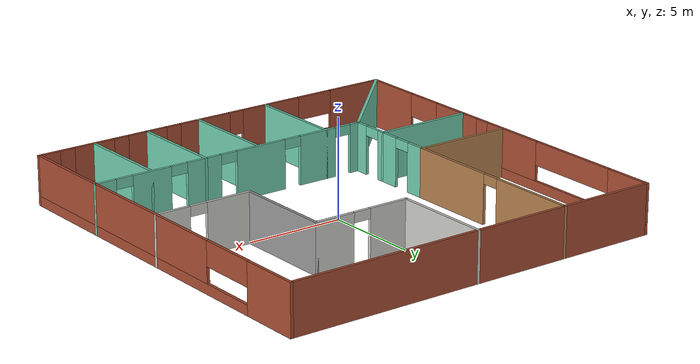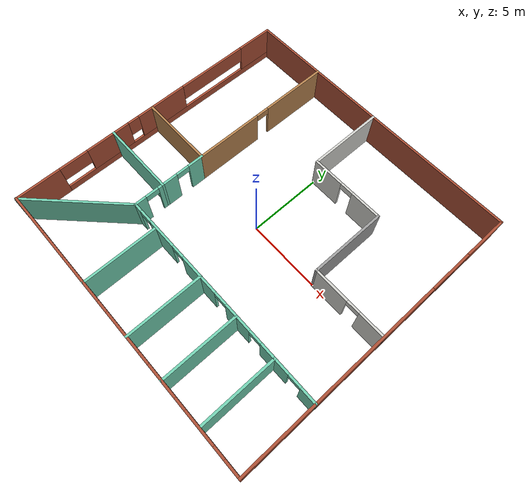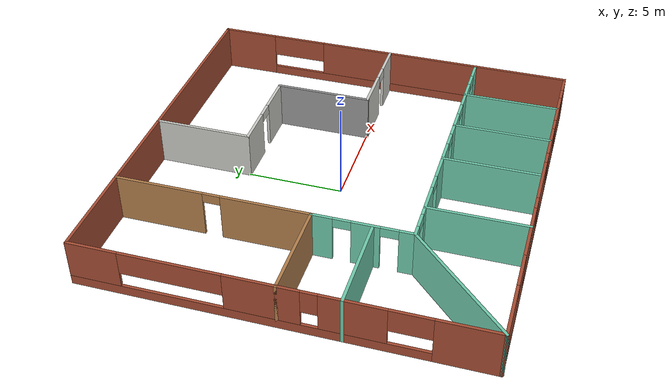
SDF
<?xml version='1.0'?>
<sdf version='1.6'>
  <model name='Building'>
    <pose frame=''>-0.015533 -0.015533 0 0 -0 0</pose>
    <link name='Wall_11'>
      <collision name='Wall_11_Collision'>
        <geometry>
          <box>
            <size>5.15 0.15 2.5</size>
          </box>
        </geometry>
        <pose frame=''>0 0 1.25 0 -0 0</pose>
      </collision>
      <visual name='Wall_11_Visual'>
        <pose frame=''>0 0 1.25 0 -0 0</pose>
        <geometry>
          <box>
            <size>5.15 0.15 2.5</size>
          </box>
        </geometry>
        <material>
          <script>
            <uri>file://media/materials/scripts/gazebo.material</uri>
            <name>Gazebo/Grey</name>
          </script>
          <ambient>0.435294 0.796078 0.67451 1</ambient>
        </material>
        <meta>
          <layer>0</layer>
        </meta>
      </visual>
      <pose frame=''>-7.48447 -2.98447 0 0 -0 0</pose>
    </link>
    <link name='Wall_13'>
      <collision name='Wall_13_Collision'>
        <geometry>
          <box>
            <size>7.22107 0.15 2.5</size>
          </box>
        </geometry>
        <pose frame=''>0 0 1.25 0 -0 0</pose>
      </collision>
      <visual name='Wall_13_Visual'>
        <pose frame=''>0 0 1.25 0 -0 0</pose>
        <geometry>
          <box>
            <size>7.22107 0.15 2.5</size>
          </box>
        </geometry>
        <material>
          <script>
            <uri>file://media/materials/scripts/gazebo.material</uri>
            <name>Gazebo/Grey</name>
          </script>
          <ambient>0.435294 0.796078 0.67451 1</ambient>
        </material>
        <meta>
          <layer>0</layer>
        </meta>
      </visual>
      <pose frame=''>-7.48447 -7.48447 0 0 0 -2.35619</pose>
    </link>
    <link name='Wall_15'>
      <collision name='Wall_15_Collision'>
        <geometry>
          <box>
            <size>5.15 0.15 2.5</size>
          </box>
        </geometry>
        <pose frame=''>0 0 1.25 0 -0 0</pose>
      </collision>
      <visual name='Wall_15_Visual'>
        <pose frame=''>0 0 1.25 0 -0 0</pose>
        <geometry>
          <box>
            <size>5.15 0.15 2.5</size>
          </box>
        </geometry>
        <material>
          <script>
            <uri>file://media/materials/scripts/gazebo.material</uri>
            <name>Gazebo/Grey</name>
          </script>
          <ambient>0.435294 0.796078 0.67451 1</ambient>
        </material>
        <meta>
          <layer>0</layer>
        </meta>
      </visual>
      <pose frame=''>-2.98447 -7.48447 0 0 0 -1.5708</pose>
    </link>
    <link name='Wall_17'>
      <collision name='Wall_17_Collision'>
        <geometry>
          <box>
            <size>5.15 0.15 2.5</size>
          </box>
        </geometry>
        <pose frame=''>0 0 1.25 0 -0 0</pose>
      </collision>
      <visual name='Wall_17_Visual'>
        <pose frame=''>0 0 1.25 0 -0 0</pose>
        <geometry>
          <box>
            <size>5.15 0.15 2.5</size>
          </box>
        </geometry>
        <material>
          <script>
            <uri>file://media/materials/scripts/gazebo.material</uri>
            <name>Gazebo/Grey</name>
          </script>
          <ambient>0.435294 0.796078 0.67451 1</ambient>
        </material>
        <meta>
          <layer>0</layer>
        </meta>
      </visual>
      <pose frame=''>7.01553 -7.48447 0 0 0 -1.5708</pose>
    </link>
    <link name='Wall_19'>
      <collision name='Wall_19_Collision'>
        <geometry>
          <box>
            <size>5.15 0.15 2.5</size>
          </box>
        </geometry>
        <pose frame=''>0 0 1.25 0 -0 0</pose>
      </collision>
      <visual name='Wall_19_Visual'>
        <pose frame=''>0 0 1.25 0 -0 0</pose>
        <geometry>
          <box>
            <size>5.15 0.15 2.5</size>
          </box>
        </geometry>
        <material>
          <script>
            <uri>file://media/materials/scripts/gazebo.material</uri>
            <name>Gazebo/Grey</name>
          </script>
          <ambient>0.435294 0.796078 0.67451 1</ambient>
        </material>
        <meta>
          <layer>0</layer>
        </meta>
      </visual>
      <pose frame=''>4.01553 -7.48447 0 0 0 -1.5708</pose>
    </link>
    <link name='Wall_2'>
      <collision name='Wall_2_Collision'>
        <geometry>
          <box>
            <size>20.15 0.15 2.5</size>
          </box>
        </geometry>
        <pose frame=''>0 0 1.25 0 -0 0</pose>
      </collision>
      <visual name='Wall_2_Visual'>
        <pose frame=''>0 0 1.25 0 -0 0</pose>
        <geometry>
          <box>
            <size>20.15 0.15 2.5</size>
          </box>
        </geometry>
        <material>
          <script>
            <uri>file://media/materials/scripts/gazebo.material</uri>
            <name>Gazebo/Bricks</name>
          </script>
          <ambient>1 1 1 1</ambient>
        </material>
        <meta>
          <layer>0</layer>
        </meta>
      </visual>
      <pose frame=''>0.015533 10.0155 0 0 -0 0</pose>
    </link>
    <link name='Wall_21'>
      <collision name='Wall_21_Collision'>
        <geometry>
          <box>
            <size>5.15 0.15 2.5</size>
          </box>
        </geometry>
        <pose frame=''>0 0 1.25 0 -0 0</pose>
      </collision>
      <visual name='Wall_21_Visual'>
        <pose frame=''>0 0 1.25 0 -0 0</pose>
        <geometry>
          <box>
            <size>5.15 0.15 2.5</size>
          </box>
        </geometry>
        <material>
          <script>
            <uri>file://media/materials/scripts/gazebo.material</uri>
            <name>Gazebo/Grey</name>
          </script>
          <ambient>0.435294 0.796078 0.67451 1</ambient>
        </material>
        <meta>
          <layer>0</layer>
        </meta>
      </visual>
      <pose frame=''>1.01553 -7.48447 0 0 0 -1.5708</pose>
    </link>
    <link name='Wall_23'>
      <collision name='Wall_23_Collision'>
        <geometry>
          <box>
            <size>5.15 0.15 2.5</size>
          </box>
        </geometry>
        <pose frame=''>0 0 1.25 0 -0 0</pose>
      </collision>
      <visual name='Wall_23_Visual'>
        <pose frame=''>0 0 1.25 0 -0 0</pose>
        <geometry>
          <box>
            <size>5.15 0.15 2.5</size>
          </box>
        </geometry>
        <material>
          <script>
            <uri>file://media/materials/scripts/gazebo.material</uri>
            <name>Gazebo/CeilingTiled</name>
          </script>
          <ambient>1 1 1 1</ambient>
        </material>
        <meta>
          <layer>0</layer>
        </meta>
      </visual>
      <pose frame=''>0.015533 7.51553 0 0 0 -1.5708</pose>
    </link>
    <link name='Wall_24'>
      <pose frame=''>2.51553 5.01553 0 0 -0 0</pose>
      <visual name='Wall_24_Visual_0'>
        <pose frame=''>-1.5125 0 1.25 0 -0 0</pose>
        <geometry>
          <box>
            <size>2.125 0.15 2.5</size>
          </box>
        </geometry>
        <material>
          <script>
            <uri>file://media/materials/scripts/gazebo.material</uri>
            <name>Gazebo/CeilingTiled</name>
          </script>
          <ambient>1 1 1 1</ambient>
        </material>
        <meta>
          <layer>0</layer>
        </meta>
      </visual>
      <collision name='Wall_24_Collision_0'>
        <geometry>
          <box>
            <size>2.125 0.15 2.5</size>
          </box>
        </geometry>
        <pose frame=''>-1.5125 0 1.25 0 -0 0</pose>
      </collision>
      <visual name='Wall_24_Visual_1'>
        <pose frame=''>1.5125 0 1.25 0 -0 0</pose>
        <geometry>
          <box>
            <size>2.125 0.15 2.5</size>
          </box>
        </geometry>
        <material>
          <script>
            <uri>file://media/materials/scripts/gazebo.material</uri>
            <name>Gazebo/CeilingTiled</name>
          </script>
          <ambient>1 1 1 1</ambient>
        </material>
        <meta>
          <layer>0</layer>
        </meta>
      </visual>
      <collision name='Wall_24_Collision_1'>
        <geometry>
          <box>
            <size>2.125 0.15 2.5</size>
          </box>
        </geometry>
        <pose frame=''>1.5125 0 1.25 0 -0 0</pose>
      </collision>
      <visual name='Wall_24_Visual_2'>
        <pose frame=''>-0 0 2.25 0 -0 0</pose>
        <geometry>
          <box>
            <size>0.9 0.15 0.5</size>
          </box>
        </geometry>
        <material>
          <script>
            <uri>file://media/materials/scripts/gazebo.material</uri>
            <name>Gazebo/CeilingTiled</name>
          </script>
          <ambient>1 1 1 1</ambient>
        </material>
        <meta>
          <layer>0</layer>
        </meta>
      </visual>
      <collision name='Wall_24_Collision_2'>
        <geometry>
          <box>
            <size>0.9 0.15 0.5</size>
          </box>
        </geometry>
        <pose frame=''>-0 0 2.25 0 -0 0</pose>
      </collision>
    </link>
    <link name='Wall_25'>
      <collision name='Wall_25_Collision'>
        <geometry>
          <box>
            <size>5.15 0.15 2.5</size>
          </box>
        </geometry>
        <pose frame=''>0 0 1.25 0 -0 0</pose>
      </collision>
      <visual name='Wall_25_Visual'>
        <pose frame=''>0 0 1.25 0 -0 0</pose>
        <geometry>
          <box>
            <size>5.15 0.15 2.5</size>
          </box>
        </geometry>
        <material>
          <script>
            <uri>file://media/materials/scripts/gazebo.material</uri>
            <name>Gazebo/Grey</name>
          </script>
          <ambient>1 1 1 1</ambient>
        </material>
        <meta>
          <layer>0</layer>
        </meta>
      </visual>
      <pose frame=''>5.01553 2.51553 0 0 0 -1.5708</pose>
    </link>
    <link name='Wall_26'>
      <pose frame=''>7.51553 0.015533 0 0 -0 0</pose>
      <visual name='Wall_26_Visual_0'>
        <pose frame=''>-1.3625 0 1.25 0 -0 0</pose>
        <geometry>
          <box>
            <size>2.425 0.15 2.5</size>
          </box>
        </geometry>
        <material>
          <script>
            <uri>file://media/materials/scripts/gazebo.material</uri>
            <name>Gazebo/CeilingTiled</name>
          </script>
          <ambient>1 1 1 1</ambient>
        </material>
        <meta>
          <layer>0</layer>
        </meta>
      </visual>
      <collision name='Wall_26_Collision_0'>
        <geometry>
          <box>
            <size>2.425 0.15 2.5</size>
          </box>
        </geometry>
        <pose frame=''>-1.3625 0 1.25 0 -0 0</pose>
      </collision>
      <visual name='Wall_26_Visual_1'>
        <pose frame=''>1.6625 0 1.25 0 -0 0</pose>
        <geometry>
          <box>
            <size>1.825 0.15 2.5</size>
          </box>
        </geometry>
        <material>
          <script>
            <uri>file://media/materials/scripts/gazebo.material</uri>
            <name>Gazebo/CeilingTiled</name>
          </script>
          <ambient>1 1 1 1</ambient>
        </material>
        <meta>
          <layer>0</layer>
        </meta>
      </visual>
      <collision name='Wall_26_Collision_1'>
        <geometry>
          <box>
            <size>1.825 0.15 2.5</size>
          </box>
        </geometry>
        <pose frame=''>1.6625 0 1.25 0 -0 0</pose>
      </collision>
      <visual name='Wall_26_Visual_2'>
        <pose frame=''>0.3 0 2.25 0 -0 0</pose>
        <geometry>
          <box>
            <size>0.9 0.15 0.5</size>
          </box>
        </geometry>
        <material>
          <script>
            <uri>file://media/materials/scripts/gazebo.material</uri>
            <name>Gazebo/CeilingTiled</name>
          </script>
          <ambient>1 1 1 1</ambient>
        </material>
        <meta>
          <layer>0</layer>
        </meta>
      </visual>
      <collision name='Wall_26_Collision_2'>
        <geometry>
          <box>
            <size>0.9 0.15 0.5</size>
          </box>
        </geometry>
        <pose frame=''>0.3 0 2.25 0 -0 0</pose>
      </collision>
    </link>
    <link name='Wall_28'>
      <pose frame=''>-4.98447 5.01553 0 0 -0 1.5708</pose>
      <visual name='Wall_28_Visual_0'>
        <pose frame=''>-2.7625 0 1.25 0 -0 0</pose>
        <geometry>
          <box>
            <size>4.625 0.15 2.5</size>
          </box>
        </geometry>
        <material>
          <script>
            <uri>file://media/materials/scripts/gazebo.material</uri>
            <name>Gazebo/Wood</name>
          </script>
          <ambient>1 1 1 1</ambient>
        </material>
        <meta>
          <layer>0</layer>
        </meta>
      </visual>
      <collision name='Wall_28_Collision_0'>
        <geometry>
          <box>
            <size>4.625 0.15 2.5</size>
          </box>
        </geometry>
        <pose frame=''>-2.7625 0 1.25 0 -0 0</pose>
      </collision>
      <visual name='Wall_28_Visual_1'>
        <pose frame=''>2.7625 0 1.25 0 -0 0</pose>
        <geometry>
          <box>
            <size>4.625 0.15 2.5</size>
          </box>
        </geometry>
        <material>
          <script>
            <uri>file://media/materials/scripts/gazebo.material</uri>
            <name>Gazebo/Wood</name>
          </script>
          <ambient>1 1 1 1</ambient>
        </material>
        <meta>
          <layer>0</layer>
        </meta>
      </visual>
      <collision name='Wall_28_Collision_1'>
        <geometry>
          <box>
            <size>4.625 0.15 2.5</size>
          </box>
        </geometry>
        <pose frame=''>2.7625 0 1.25 0 -0 0</pose>
      </collision>
      <visual name='Wall_28_Visual_2'>
        <pose frame=''>0 0 2.25 0 -0 0</pose>
        <geometry>
          <box>
            <size>0.9 0.15 0.5</size>
          </box>
        </geometry>
        <material>
          <script>
            <uri>file://media/materials/scripts/gazebo.material</uri>
            <name>Gazebo/Wood</name>
          </script>
          <ambient>1 1 1 1</ambient>
        </material>
        <meta>
          <layer>0</layer>
        </meta>
      </visual>
      <collision name='Wall_28_Collision_2'>
        <geometry>
          <box>
            <size>0.9 0.15 0.5</size>
          </box>
        </geometry>
        <pose frame=''>0 0 2.25 0 -0 0</pose>
      </collision>
    </link>
    <link name='Wall_3'>
      <pose frame=''>10.0155 0.015533 0 0 0 -1.5708</pose>
      <visual name='Wall_3_Visual_0'>
        <pose frame=''>-8.5375 0 1.25 0 -0 0</pose>
        <geometry>
          <box>
            <size>3.075 0.15 2.5</size>
          </box>
        </geometry>
        <material>
          <script>
            <uri>file://media/materials/scripts/gazebo.material</uri>
            <name>Gazebo/Bricks</name>
          </script>
          <ambient>1 1 1 1</ambient>
        </material>
        <meta>
          <layer>0</layer>
        </meta>
      </visual>
      <collision name='Wall_3_Collision_0'>
        <geometry>
          <box>
            <size>3.075 0.15 2.5</size>
          </box>
        </geometry>
        <pose frame=''>-8.5375 0 1.25 0 -0 0</pose>
      </collision>
      <visual name='Wall_3_Visual_1'>
        <pose frame=''>1.5375 0 0.25 0 -0 0</pose>
        <geometry>
          <box>
            <size>17.075 0.15 0.5</size>
          </box>
        </geometry>
        <material>
          <script>
            <uri>file://media/materials/scripts/gazebo.material</uri>
            <name>Gazebo/Bricks</name>
          </script>
          <ambient>1 1 1 1</ambient>
        </material>
        <meta>
          <layer>0</layer>
        </meta>
      </visual>
      <collision name='Wall_3_Collision_1'>
        <geometry>
          <box>
            <size>17.075 0.15 0.5</size>
          </box>
        </geometry>
        <pose frame=''>1.5375 0 0.25 0 -0 0</pose>
      </collision>
      <visual name='Wall_3_Visual_2'>
        <pose frame=''>3.0375 0 1.5 0 -0 0</pose>
        <geometry>
          <box>
            <size>14.075 0.15 2</size>
          </box>
        </geometry>
        <material>
          <script>
            <uri>file://media/materials/scripts/gazebo.material</uri>
            <name>Gazebo/Bricks</name>
          </script>
          <ambient>1 1 1 1</ambient>
        </material>
        <meta>
          <layer>0</layer>
        </meta>
      </visual>
      <collision name='Wall_3_Collision_2'>
        <geometry>
          <box>
            <size>14.075 0.15 2</size>
          </box>
        </geometry>
        <pose frame=''>3.0375 0 1.5 0 -0 0</pose>
      </collision>
      <visual name='Wall_3_Visual_3'>
        <pose frame=''>-5.5 0 1.9 0 -0 0</pose>
        <geometry>
          <box>
            <size>3 0.15 1.2</size>
          </box>
        </geometry>
        <material>
          <script>
            <uri>file://media/materials/scripts/gazebo.material</uri>
            <name>Gazebo/Bricks</name>
          </script>
          <ambient>1 1 1 1</ambient>
        </material>
        <meta>
          <layer>0</layer>
        </meta>
      </visual>
      <collision name='Wall_3_Collision_3'>
        <geometry>
          <box>
            <size>3 0.15 1.2</size>
          </box>
        </geometry>
        <pose frame=''>-5.5 0 1.9 0 -0 0</pose>
      </collision>
    </link>
    <link name='Wall_4'>
      <pose frame=''>0.015533 -9.98447 0 0 -0 3.14159</pose>
      <visual name='Wall_4_Visual_0'>
        <pose frame=''>-9.4875 0 1.25 0 -0 0</pose>
        <geometry>
          <box>
            <size>1.175 0.15 2.5</size>
          </box>
        </geometry>
        <material>
          <script>
            <uri>file://media/materials/scripts/gazebo.material</uri>
            <name>Gazebo/Bricks</name>
          </script>
          <ambient>1 1 1 1</ambient>
        </material>
        <meta>
          <layer>0</layer>
        </meta>
      </visual>
      <collision name='Wall_4_Collision_0'>
        <geometry>
          <box>
            <size>1.175 0.15 2.5</size>
          </box>
        </geometry>
        <pose frame=''>-9.4875 0 1.25 0 -0 0</pose>
      </collision>
      <visual name='Wall_4_Visual_1'>
        <pose frame=''>0.5875 0 0.25 0 -0 0</pose>
        <geometry>
          <box>
            <size>18.975 0.15 0.5</size>
          </box>
        </geometry>
        <material>
          <script>
            <uri>file://media/materials/scripts/gazebo.material</uri>
            <name>Gazebo/Bricks</name>
          </script>
          <ambient>1 1 1 1</ambient>
        </material>
        <meta>
          <layer>0</layer>
        </meta>
      </visual>
      <collision name='Wall_4_Collision_1'>
        <geometry>
          <box>
            <size>18.975 0.15 0.5</size>
          </box>
        </geometry>
        <pose frame=''>0.5875 0 0.25 0 -0 0</pose>
      </collision>
      <visual name='Wall_4_Visual_2'>
        <pose frame=''>-7 0 1.5 0 -0 0</pose>
        <geometry>
          <box>
            <size>2.2 0.15 2</size>
          </box>
        </geometry>
        <material>
          <script>
            <uri>file://media/materials/scripts/gazebo.material</uri>
            <name>Gazebo/Bricks</name>
          </script>
          <ambient>1 1 1 1</ambient>
        </material>
        <meta>
          <layer>0</layer>
        </meta>
      </visual>
      <collision name='Wall_4_Collision_2'>
        <geometry>
          <box>
            <size>2.2 0.15 2</size>
          </box>
        </geometry>
        <pose frame=''>-7 0 1.5 0 -0 0</pose>
      </collision>
      <visual name='Wall_4_Visual_3'>
        <pose frame=''>-4 0 1.5 0 -0 0</pose>
        <geometry>
          <box>
            <size>2.2 0.15 2</size>
          </box>
        </geometry>
        <material>
          <script>
            <uri>file://media/materials/scripts/gazebo.material</uri>
            <name>Gazebo/Bricks</name>
          </script>
          <ambient>1 1 1 1</ambient>
        </material>
        <meta>
          <layer>0</layer>
        </meta>
      </visual>
      <collision name='Wall_4_Collision_3'>
        <geometry>
          <box>
            <size>2.2 0.15 2</size>
          </box>
        </geometry>
        <pose frame=''>-4 0 1.5 0 -0 0</pose>
      </collision>
      <visual name='Wall_4_Visual_4'>
        <pose frame=''>-0.65 0 1.5 0 -0 0</pose>
        <geometry>
          <box>
            <size>2.9 0.15 2</size>
          </box>
        </geometry>
        <material>
          <script>
            <uri>file://media/materials/scripts/gazebo.material</uri>
            <name>Gazebo/Bricks</name>
          </script>
          <ambient>1 1 1 1</ambient>
        </material>
        <meta>
          <layer>0</layer>
        </meta>
      </visual>
      <collision name='Wall_4_Collision_4'>
        <geometry>
          <box>
            <size>2.9 0.15 2</size>
          </box>
        </geometry>
        <pose frame=''>-0.65 0 1.5 0 -0 0</pose>
      </collision>
      <visual name='Wall_4_Visual_5'>
        <pose frame=''>3.3 0 1.5 0 -0 0</pose>
        <geometry>
          <box>
            <size>3.4 0.15 2</size>
          </box>
        </geometry>
        <material>
          <script>
            <uri>file://media/materials/scripts/gazebo.material</uri>
            <name>Gazebo/Bricks</name>
          </script>
          <ambient>1 1 1 1</ambient>
        </material>
        <meta>
          <layer>0</layer>
        </meta>
      </visual>
      <collision name='Wall_4_Collision_5'>
        <geometry>
          <box>
            <size>3.4 0.15 2</size>
          </box>
        </geometry>
        <pose frame=''>3.3 0 1.5 0 -0 0</pose>
      </collision>
      <visual name='Wall_4_Visual_6'>
        <pose frame=''>8.5375 0 1.5 0 -0 0</pose>
        <geometry>
          <box>
            <size>3.075 0.15 2</size>
          </box>
        </geometry>
        <material>
          <script>
            <uri>file://media/materials/scripts/gazebo.material</uri>
            <name>Gazebo/Bricks</name>
          </script>
          <ambient>1 1 1 1</ambient>
        </material>
        <meta>
          <layer>0</layer>
        </meta>
      </visual>
      <collision name='Wall_4_Collision_6'>
        <geometry>
          <box>
            <size>3.075 0.15 2</size>
          </box>
        </geometry>
        <pose frame=''>8.5375 0 1.5 0 -0 0</pose>
      </collision>
      <visual name='Wall_4_Visual_7'>
        <pose frame=''>-8.5 0 1.9 0 -0 0</pose>
        <geometry>
          <box>
            <size>0.8 0.15 1.2</size>
          </box>
        </geometry>
        <material>
          <script>
            <uri>file://media/materials/scripts/gazebo.material</uri>
            <name>Gazebo/Bricks</name>
          </script>
          <ambient>1 1 1 1</ambient>
        </material>
        <meta>
          <layer>0</layer>
        </meta>
      </visual>
      <collision name='Wall_4_Collision_7'>
        <geometry>
          <box>
            <size>0.8 0.15 1.2</size>
          </box>
        </geometry>
        <pose frame=''>-8.5 0 1.9 0 -0 0</pose>
      </collision>
      <visual name='Wall_4_Visual_8'>
        <pose frame=''>-5.5 0 1.9 0 -0 0</pose>
        <geometry>
          <box>
            <size>0.8 0.15 1.2</size>
          </box>
        </geometry>
        <material>
          <script>
            <uri>file://media/materials/scripts/gazebo.material</uri>
            <name>Gazebo/Bricks</name>
          </script>
          <ambient>1 1 1 1</ambient>
        </material>
        <meta>
          <layer>0</layer>
        </meta>
      </visual>
      <collision name='Wall_4_Collision_8'>
        <geometry>
          <box>
            <size>0.8 0.15 1.2</size>
          </box>
        </geometry>
        <pose frame=''>-5.5 0 1.9 0 -0 0</pose>
      </collision>
      <visual name='Wall_4_Visual_9'>
        <pose frame=''>-2.5 0 1.9 0 -0 0</pose>
        <geometry>
          <box>
            <size>0.8 0.15 1.2</size>
          </box>
        </geometry>
        <material>
          <script>
            <uri>file://media/materials/scripts/gazebo.material</uri>
            <name>Gazebo/Bricks</name>
          </script>
          <ambient>1 1 1 1</ambient>
        </material>
        <meta>
          <layer>0</layer>
        </meta>
      </visual>
      <collision name='Wall_4_Collision_9'>
        <geometry>
          <box>
            <size>0.8 0.15 1.2</size>
          </box>
        </geometry>
        <pose frame=''>-2.5 0 1.9 0 -0 0</pose>
      </collision>
      <visual name='Wall_4_Visual_10'>
        <pose frame=''>1.2 0 1.9 0 -0 0</pose>
        <geometry>
          <box>
            <size>0.8 0.15 1.2</size>
          </box>
        </geometry>
        <material>
          <script>
            <uri>file://media/materials/scripts/gazebo.material</uri>
            <name>Gazebo/Bricks</name>
          </script>
          <ambient>1 1 1 1</ambient>
        </material>
        <meta>
          <layer>0</layer>
        </meta>
      </visual>
      <collision name='Wall_4_Collision_10'>
        <geometry>
          <box>
            <size>0.8 0.15 1.2</size>
          </box>
        </geometry>
        <pose frame=''>1.2 0 1.9 0 -0 0</pose>
      </collision>
      <visual name='Wall_4_Visual_11'>
        <pose frame=''>6 0 1.9 0 -0 0</pose>
        <geometry>
          <box>
            <size>2 0.15 1.2</size>
          </box>
        </geometry>
        <material>
          <script>
            <uri>file://media/materials/scripts/gazebo.material</uri>
            <name>Gazebo/Bricks</name>
          </script>
          <ambient>1 1 1 1</ambient>
        </material>
        <meta>
          <layer>0</layer>
        </meta>
      </visual>
      <collision name='Wall_4_Collision_11'>
        <geometry>
          <box>
            <size>2 0.15 1.2</size>
          </box>
        </geometry>
        <pose frame=''>6 0 1.9 0 -0 0</pose>
      </collision>
    </link>
    <link name='Wall_5'>
      <pose frame=''>-9.98447 0.015533 0 0 -0 1.5708</pose>
      <visual name='Wall_5_Visual_0'>
        <pose frame=''>-8.5375 0 1.25 0 -0 0</pose>
        <geometry>
          <box>
            <size>3.075 0.15 2.5</size>
          </box>
        </geometry>
        <material>
          <script>
            <uri>file://media/materials/scripts/gazebo.material</uri>
            <name>Gazebo/Bricks</name>
          </script>
          <ambient>1 1 1 1</ambient>
        </material>
        <meta>
          <layer>0</layer>
        </meta>
      </visual>
      <collision name='Wall_5_Collision_0'>
        <geometry>
          <box>
            <size>3.075 0.15 2.5</size>
          </box>
        </geometry>
        <pose frame=''>-8.5375 0 1.25 0 -0 0</pose>
      </collision>
      <visual name='Wall_5_Visual_1'>
        <pose frame=''>1.5375 0 0.25 0 -0 0</pose>
        <geometry>
          <box>
            <size>17.075 0.15 0.5</size>
          </box>
        </geometry>
        <material>
          <script>
            <uri>file://media/materials/scripts/gazebo.material</uri>
            <name>Gazebo/Bricks</name>
          </script>
          <ambient>1 1 1 1</ambient>
        </material>
        <meta>
          <layer>0</layer>
        </meta>
      </visual>
      <collision name='Wall_5_Collision_1'>
        <geometry>
          <box>
            <size>17.075 0.15 0.5</size>
          </box>
        </geometry>
        <pose frame=''>1.5375 0 0.25 0 -0 0</pose>
      </collision>
      <visual name='Wall_5_Visual_2'>
        <pose frame=''>-3.45 0 1.5 0 -0 0</pose>
        <geometry>
          <box>
            <size>3.1 0.15 2</size>
          </box>
        </geometry>
        <material>
          <script>
            <uri>file://media/materials/scripts/gazebo.material</uri>
            <name>Gazebo/Bricks</name>
          </script>
          <ambient>1 1 1 1</ambient>
        </material>
        <meta>
          <layer>0</layer>
        </meta>
      </visual>
      <collision name='Wall_5_Collision_2'>
        <geometry>
          <box>
            <size>3.1 0.15 2</size>
          </box>
        </geometry>
        <pose frame=''>-3.45 0 1.5 0 -0 0</pose>
      </collision>
      <visual name='Wall_5_Visual_3'>
        <pose frame=''>0.7 0 1.5 0 -0 0</pose>
        <geometry>
          <box>
            <size>3.6 0.15 2</size>
          </box>
        </geometry>
        <material>
          <script>
            <uri>file://media/materials/scripts/gazebo.material</uri>
            <name>Gazebo/Bricks</name>
          </script>
          <ambient>1 1 1 1</ambient>
        </material>
        <meta>
          <layer>0</layer>
        </meta>
      </visual>
      <collision name='Wall_5_Collision_3'>
        <geometry>
          <box>
            <size>3.6 0.15 2</size>
          </box>
        </geometry>
        <pose frame=''>0.7 0 1.5 0 -0 0</pose>
      </collision>
      <visual name='Wall_5_Visual_4'>
        <pose frame=''>8.7875 0 1.5 0 -0 0</pose>
        <geometry>
          <box>
            <size>2.575 0.15 2</size>
          </box>
        </geometry>
        <material>
          <script>
            <uri>file://media/materials/scripts/gazebo.material</uri>
            <name>Gazebo/Bricks</name>
          </script>
          <ambient>1 1 1 1</ambient>
        </material>
        <meta>
          <layer>0</layer>
        </meta>
      </visual>
      <collision name='Wall_5_Collision_4'>
        <geometry>
          <box>
            <size>2.575 0.15 2</size>
          </box>
        </geometry>
        <pose frame=''>8.7875 0 1.5 0 -0 0</pose>
      </collision>
      <visual name='Wall_5_Visual_5'>
        <pose frame=''>-6 0 1.9 0 -0 0</pose>
        <geometry>
          <box>
            <size>2 0.15 1.2</size>
          </box>
        </geometry>
        <material>
          <script>
            <uri>file://media/materials/scripts/gazebo.material</uri>
            <name>Gazebo/Bricks</name>
          </script>
          <ambient>1 1 1 1</ambient>
        </material>
        <meta>
          <layer>0</layer>
        </meta>
      </visual>
      <collision name='Wall_5_Collision_5'>
        <geometry>
          <box>
            <size>2 0.15 1.2</size>
          </box>
        </geometry>
        <pose frame=''>-6 0 1.9 0 -0 0</pose>
      </collision>
      <visual name='Wall_5_Visual_6'>
        <pose frame=''>-1.5 0 1.9 0 -0 0</pose>
        <geometry>
          <box>
            <size>0.8 0.15 1.2</size>
          </box>
        </geometry>
        <material>
          <script>
            <uri>file://media/materials/scripts/gazebo.material</uri>
            <name>Gazebo/Bricks</name>
          </script>
          <ambient>1 1 1 1</ambient>
        </material>
        <meta>
          <layer>0</layer>
        </meta>
      </visual>
      <collision name='Wall_5_Collision_6'>
        <geometry>
          <box>
            <size>0.8 0.15 1.2</size>
          </box>
        </geometry>
        <pose frame=''>-1.5 0 1.9 0 -0 0</pose>
      </collision>
      <visual name='Wall_5_Visual_7'>
        <pose frame=''>5 0 1.9 0 -0 0</pose>
        <geometry>
          <box>
            <size>5 0.15 1.2</size>
          </box>
        </geometry>
        <material>
          <script>
            <uri>file://media/materials/scripts/gazebo.material</uri>
            <name>Gazebo/Bricks</name>
          </script>
          <ambient>1 1 1 1</ambient>
        </material>
        <meta>
          <layer>0</layer>
        </meta>
      </visual>
      <collision name='Wall_5_Collision_7'>
        <geometry>
          <box>
            <size>5 0.15 1.2</size>
          </box>
        </geometry>
        <pose frame=''>5 0 1.9 0 -0 0</pose>
      </collision>
    </link>
    <link name='Wall_7'>
      <collision name='Wall_7_Collision'>
        <geometry>
          <box>
            <size>5.15 0.15 2.5</size>
          </box>
        </geometry>
        <pose frame=''>0 0 1.25 0 -0 0</pose>
      </collision>
      <visual name='Wall_7_Visual'>
        <pose frame=''>0 0 1.25 0 -0 0</pose>
        <geometry>
          <box>
            <size>5.15 0.15 2.5</size>
          </box>
        </geometry>
        <material>
          <script>
            <uri>file://media/materials/scripts/gazebo.material</uri>
            <name>Gazebo/Wood</name>
          </script>
          <ambient>1 1 1 1</ambient>
        </material>
        <meta>
          <layer>0</layer>
        </meta>
      </visual>
      <pose frame=''>-7.48447 0.015533 0 0 -0 0</pose>
    </link>
    <link name='Wall_8'>
      <pose frame=''>-4.98447 -2.48447 0 0 0 -1.5708</pose>
      <visual name='Wall_8_Visual_0'>
        <pose frame=''>-2.0125 0 1.25 0 -0 0</pose>
        <geometry>
          <box>
            <size>1.125 0.15 2.5</size>
          </box>
        </geometry>
        <material>
          <script>
            <uri>file://media/materials/scripts/gazebo.material</uri>
            <name>Gazebo/Grey</name>
          </script>
          <ambient>0.435294 0.796078 0.67451 1</ambient>
        </material>
        <meta>
          <layer>0</layer>
        </meta>
      </visual>
      <collision name='Wall_8_Collision_0'>
        <geometry>
          <box>
            <size>1.125 0.15 2.5</size>
          </box>
        </geometry>
        <pose frame=''>-2.0125 0 1.25 0 -0 0</pose>
      </collision>
      <visual name='Wall_8_Visual_1'>
        <pose frame=''>0.15 0 1.25 0 -0 0</pose>
        <geometry>
          <box>
            <size>1.4 0.15 2.5</size>
          </box>
        </geometry>
        <material>
          <script>
            <uri>file://media/materials/scripts/gazebo.material</uri>
            <name>Gazebo/Grey</name>
          </script>
          <ambient>0.435294 0.796078 0.67451 1</ambient>
        </material>
        <meta>
          <layer>0</layer>
        </meta>
      </visual>
      <collision name='Wall_8_Collision_1'>
        <geometry>
          <box>
            <size>1.4 0.15 2.5</size>
          </box>
        </geometry>
        <pose frame=''>0.15 0 1.25 0 -0 0</pose>
      </collision>
      <visual name='Wall_8_Visual_2'>
        <pose frame=''>2.1625 0 1.25 0 -0 0</pose>
        <geometry>
          <box>
            <size>0.825 0.15 2.5</size>
          </box>
        </geometry>
        <material>
          <script>
            <uri>file://media/materials/scripts/gazebo.material</uri>
            <name>Gazebo/Grey</name>
          </script>
          <ambient>0.435294 0.796078 0.67451 1</ambient>
        </material>
        <meta>
          <layer>0</layer>
        </meta>
      </visual>
      <collision name='Wall_8_Collision_2'>
        <geometry>
          <box>
            <size>0.825 0.15 2.5</size>
          </box>
        </geometry>
        <pose frame=''>2.1625 0 1.25 0 -0 0</pose>
      </collision>
      <visual name='Wall_8_Visual_3'>
        <pose frame=''>-1 0 2.25 0 -0 0</pose>
        <geometry>
          <box>
            <size>0.9 0.15 0.5</size>
          </box>
        </geometry>
        <material>
          <script>
            <uri>file://media/materials/scripts/gazebo.material</uri>
            <name>Gazebo/Grey</name>
          </script>
          <ambient>0.435294 0.796078 0.67451 1</ambient>
        </material>
        <meta>
          <layer>0</layer>
        </meta>
      </visual>
      <collision name='Wall_8_Collision_3'>
        <geometry>
          <box>
            <size>0.9 0.15 0.5</size>
          </box>
        </geometry>
        <pose frame=''>-1 0 2.25 0 -0 0</pose>
      </collision>
      <visual name='Wall_8_Visual_4'>
        <pose frame=''>1.3 0 2.25 0 -0 0</pose>
        <geometry>
          <box>
            <size>0.9 0.15 0.5</size>
          </box>
        </geometry>
        <material>
          <script>
            <uri>file://media/materials/scripts/gazebo.material</uri>
            <name>Gazebo/Grey</name>
          </script>
          <ambient>0.435294 0.796078 0.67451 1</ambient>
        </material>
        <meta>
          <layer>0</layer>
        </meta>
      </visual>
      <collision name='Wall_8_Collision_4'>
        <geometry>
          <box>
            <size>0.9 0.15 0.5</size>
          </box>
        </geometry>
        <pose frame=''>1.3 0 2.25 0 -0 0</pose>
      </collision>
    </link>
    <link name='Wall_9'>
      <pose frame=''>2.51553 -4.98447 0 0 -0 0</pose>
      <visual name='Wall_9_Visual_0'>
        <pose frame=''>-7.2634 0 1.25 0 -0 0</pose>
        <geometry>
          <box>
            <size>0.62319 0.15 2.5</size>
          </box>
        </geometry>
        <material>
          <script>
            <uri>file://media/materials/scripts/gazebo.material</uri>
            <name>Gazebo/Grey</name>
          </script>
          <ambient>0.435294 0.796078 0.67451 1</ambient>
        </material>
        <meta>
          <layer>0</layer>
        </meta>
      </visual>
      <collision name='Wall_9_Collision_0'>
        <geometry>
          <box>
            <size>0.62319 0.15 2.5</size>
          </box>
        </geometry>
        <pose frame=''>-7.2634 0 1.25 0 -0 0</pose>
      </collision>
      <visual name='Wall_9_Visual_1'>
        <pose frame=''>-5.00091 0 1.25 0 -0 0</pose>
        <geometry>
          <box>
            <size>2.10181 0.15 2.5</size>
          </box>
        </geometry>
        <material>
          <script>
            <uri>file://media/materials/scripts/gazebo.material</uri>
            <name>Gazebo/Grey</name>
          </script>
          <ambient>0.435294 0.796078 0.67451 1</ambient>
        </material>
        <meta>
          <layer>0</layer>
        </meta>
      </visual>
      <collision name='Wall_9_Collision_1'>
        <geometry>
          <box>
            <size>2.10181 0.15 2.5</size>
          </box>
        </geometry>
        <pose frame=''>-5.00091 0 1.25 0 -0 0</pose>
      </collision>
      <visual name='Wall_9_Visual_2'>
        <pose frame=''>-1.65118 0 1.25 0 -0 0</pose>
        <geometry>
          <box>
            <size>2.79763 0.15 2.5</size>
          </box>
        </geometry>
        <material>
          <script>
            <uri>file://media/materials/scripts/gazebo.material</uri>
            <name>Gazebo/Grey</name>
          </script>
          <ambient>0.435294 0.796078 0.67451 1</ambient>
        </material>
        <meta>
          <layer>0</layer>
        </meta>
      </visual>
      <collision name='Wall_9_Collision_2'>
        <geometry>
          <box>
            <size>2.79763 0.15 2.5</size>
          </box>
        </geometry>
        <pose frame=''>-1.65118 0 1.25 0 -0 0</pose>
      </collision>
      <visual name='Wall_9_Visual_3'>
        <pose frame=''>1.59882 0 1.25 0 -0 0</pose>
        <geometry>
          <box>
            <size>1.90237 0.15 2.5</size>
          </box>
        </geometry>
        <material>
          <script>
            <uri>file://media/materials/scripts/gazebo.material</uri>
            <name>Gazebo/Grey</name>
          </script>
          <ambient>0.435294 0.796078 0.67451 1</ambient>
        </material>
        <meta>
          <layer>0</layer>
        </meta>
      </visual>
      <collision name='Wall_9_Collision_3'>
        <geometry>
          <box>
            <size>1.90237 0.15 2.5</size>
          </box>
        </geometry>
        <pose frame=''>1.59882 0 1.25 0 -0 0</pose>
      </collision>
      <visual name='Wall_9_Visual_4'>
        <pose frame=''>4.5 0 1.25 0 -0 0</pose>
        <geometry>
          <box>
            <size>2.1 0.15 2.5</size>
          </box>
        </geometry>
        <material>
          <script>
            <uri>file://media/materials/scripts/gazebo.material</uri>
            <name>Gazebo/Grey</name>
          </script>
          <ambient>0.435294 0.796078 0.67451 1</ambient>
        </material>
        <meta>
          <layer>0</layer>
        </meta>
      </visual>
      <collision name='Wall_9_Collision_4'>
        <geometry>
          <box>
            <size>2.1 0.15 2.5</size>
          </box>
        </geometry>
        <pose frame=''>4.5 0 1.25 0 -0 0</pose>
      </collision>
      <visual name='Wall_9_Visual_5'>
        <pose frame=''>7.0125 0 1.25 0 -0 0</pose>
        <geometry>
          <box>
            <size>1.125 0.15 2.5</size>
          </box>
        </geometry>
        <material>
          <script>
            <uri>file://media/materials/scripts/gazebo.material</uri>
            <name>Gazebo/Grey</name>
          </script>
          <ambient>0.435294 0.796078 0.67451 1</ambient>
        </material>
        <meta>
          <layer>0</layer>
        </meta>
      </visual>
      <collision name='Wall_9_Collision_5'>
        <geometry>
          <box>
            <size>1.125 0.15 2.5</size>
          </box>
        </geometry>
        <pose frame=''>7.0125 0 1.25 0 -0 0</pose>
      </collision>
      <visual name='Wall_9_Visual_6'>
        <pose frame=''>-6.50181 0 2.25 0 -0 0</pose>
        <geometry>
          <box>
            <size>0.9 0.15 0.5</size>
          </box>
        </geometry>
        <material>
          <script>
            <uri>file://media/materials/scripts/gazebo.material</uri>
            <name>Gazebo/Grey</name>
          </script>
          <ambient>0.435294 0.796078 0.67451 1</ambient>
        </material>
        <meta>
          <layer>0</layer>
        </meta>
      </visual>
      <collision name='Wall_9_Collision_6'>
        <geometry>
          <box>
            <size>0.9 0.15 0.5</size>
          </box>
        </geometry>
        <pose frame=''>-6.50181 0 2.25 0 -0 0</pose>
      </collision>
      <visual name='Wall_9_Visual_7'>
        <pose frame=''>-3.5 0 2.25 0 -0 0</pose>
        <geometry>
          <box>
            <size>0.9 0.15 0.5</size>
          </box>
        </geometry>
        <material>
          <script>
            <uri>file://media/materials/scripts/gazebo.material</uri>
            <name>Gazebo/Grey</name>
          </script>
          <ambient>0.435294 0.796078 0.67451 1</ambient>
        </material>
        <meta>
          <layer>0</layer>
        </meta>
      </visual>
      <collision name='Wall_9_Collision_7'>
        <geometry>
          <box>
            <size>0.9 0.15 0.5</size>
          </box>
        </geometry>
        <pose frame=''>-3.5 0 2.25 0 -0 0</pose>
      </collision>
      <visual name='Wall_9_Visual_8'>
        <pose frame=''>0.197634 0 2.25 0 -0 0</pose>
        <geometry>
          <box>
            <size>0.9 0.15 0.5</size>
          </box>
        </geometry>
        <material>
          <script>
            <uri>file://media/materials/scripts/gazebo.material</uri>
            <name>Gazebo/Grey</name>
          </script>
          <ambient>0.435294 0.796078 0.67451 1</ambient>
        </material>
        <meta>
          <layer>0</layer>
        </meta>
      </visual>
      <collision name='Wall_9_Collision_8'>
        <geometry>
          <box>
            <size>0.9 0.15 0.5</size>
          </box>
        </geometry>
        <pose frame=''>0.197634 0 2.25 0 -0 0</pose>
      </collision>
      <visual name='Wall_9_Visual_9'>
        <pose frame=''>3 0 2.25 0 -0 0</pose>
        <geometry>
          <box>
            <size>0.9 0.15 0.5</size>
          </box>
        </geometry>
        <material>
          <script>
            <uri>file://media/materials/scripts/gazebo.material</uri>
            <name>Gazebo/Grey</name>
          </script>
          <ambient>0.435294 0.796078 0.67451 1</ambient>
        </material>
        <meta>
          <layer>0</layer>
        </meta>
      </visual>
      <collision name='Wall_9_Collision_9'>
        <geometry>
          <box>
            <size>0.9 0.15 0.5</size>
          </box>
        </geometry>
        <pose frame=''>3 0 2.25 0 -0 0</pose>
      </collision>
      <visual name='Wall_9_Visual_10'>
        <pose frame=''>6 0 2.25 0 -0 0</pose>
        <geometry>
          <box>
            <size>0.9 0.15 0.5</size>
          </box>
        </geometry>
        <material>
          <script>
            <uri>file://media/materials/scripts/gazebo.material</uri>
            <name>Gazebo/Grey</name>
          </script>
          <ambient>0.435294 0.796078 0.67451 1</ambient>
        </material>
        <meta>
          <layer>0</layer>
        </meta>
      </visual>
      <collision name='Wall_9_Collision_10'>
        <geometry>
          <box>
            <size>0.9 0.15 0.5</size>
          </box>
        </geometry>
        <pose frame=''>6 0 2.25 0 -0 0</pose>
      </collision>
    </link>
    <static>1</static>
  </model>
</sdf>
